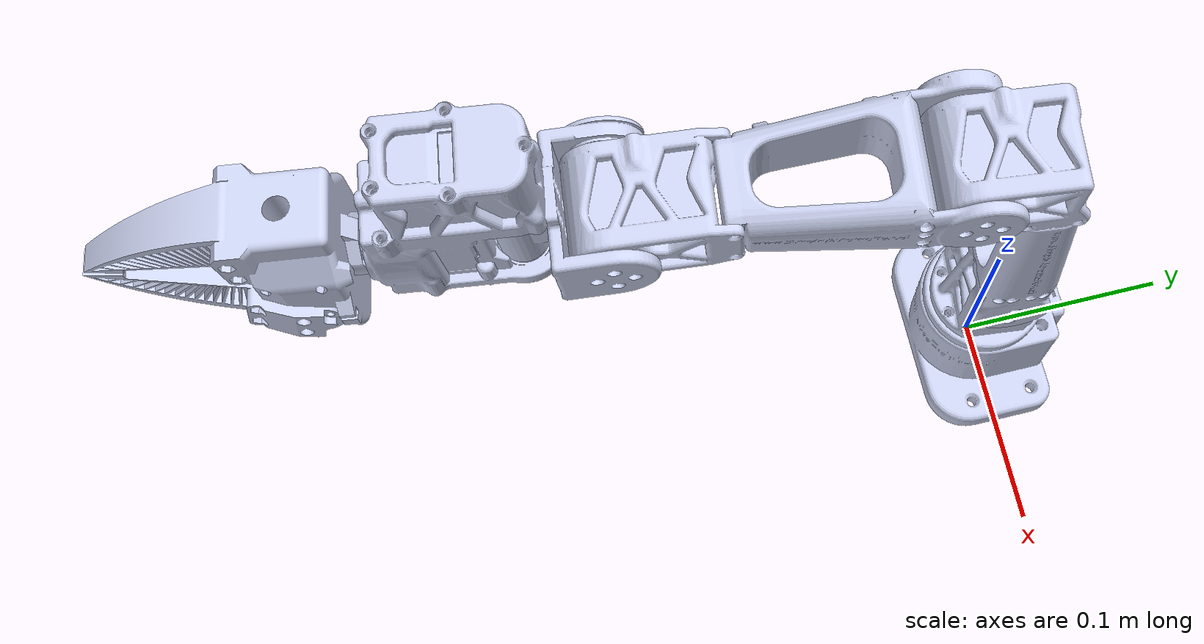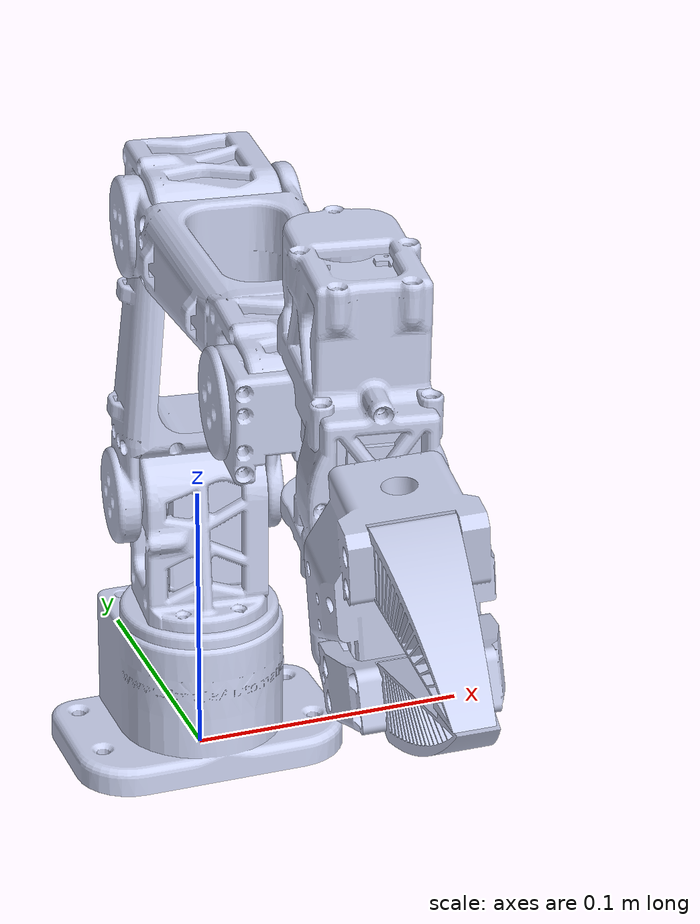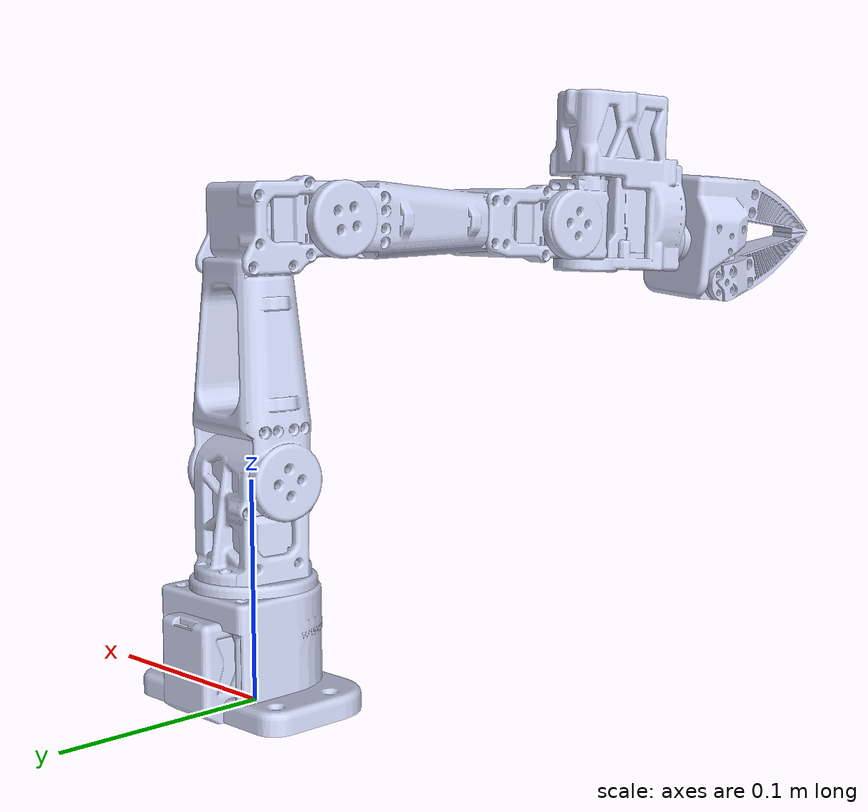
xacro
<?xml version="1.0"?>
<robot xmlns:xacro="http://www.ros.org/wiki/xacro" name="so_arm">
    <xacro:arg name="initial_positions_file" default="initial_positions.yaml" />

    <!-- Import so_arm urdf file -->
    <xacro:include filename="$(find so_arm)/urdf/so_arm.urdf" />

    <!-- Import control_xacro -->
    <xacro:include filename="so_arm.ros2_control.xacro" />

    <xacro:so_arm_ros2_control name="FakeSystem" initial_positions_file="$(arg initial_positions_file)"/>

</robot>

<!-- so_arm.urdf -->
<robot
  name="so_arm">
  <link
    name="base_link">
    <inertial>
      <origin
        xyz="-5.4461E-08 0.0042709 0.021249"
        rpy="0 0 0" />
      <mass
        value="0.15644" />
      <inertia
        ixx="6.3447E-05"
        ixy="7.3298E-11"
        ixz="1.3366E-10"
        iyy="8.3569E-05"
        iyz="-8.0284E-07"
        izz="0.00011368" />
    </inertial>
    <visual>
      <origin
        xyz="0 0 0"
        rpy="0 0 0" />
      <geometry>
        <mesh
          filename="package://so_arm/meshes/base_link.STL" />
      </geometry>
      <material
        name="">
        <color
          rgba="0.79216 0.81961 0.93333 1" />
      </material>
    </visual>
    <collision>
      <origin
        xyz="0 0 0"
        rpy="0 0 0" />
      <geometry>
        <mesh
          filename="package://so_arm/meshes/base_link.STL" />
      </geometry>
    </collision>
  </link>
  <link
    name="link1">
    <inertial>
      <origin
        xyz="0.00077888 0.00019799 0.023144"
        rpy="0 0 0" />
      <mass
        value="0.093673" />
      <inertia
        ixx="3.2621E-05"
        ixy="-1.4665E-11"
        ixz="-3.5892E-07"
        iyy="3.3211E-05"
        iyz="-2.9572E-11"
        izz="2.2848E-05" />
    </inertial>
    <visual>
      <origin
        xyz="0 0 0"
        rpy="0 0 0" />
      <geometry>
        <mesh
          filename="package://so_arm/meshes/link1.STL" />
      </geometry>
      <material
        name="">
        <color
          rgba="0.79216 0.81961 0.93333 1" />
      </material>
    </visual>
    <collision>
      <origin
        xyz="0 0 0"
        rpy="0 0 0" />
      <geometry>
        <mesh
          filename="package://so_arm/meshes/link1.STL" />
      </geometry>
    </collision>
  </link>
  <joint
    name="joint1"
    type="revolute">
    <origin
      xyz="0 0 0.056"
      rpy="0 0 -0.10571" />
    <parent
      link="base_link" />
    <child
      link="link1" />
    <axis
      xyz="0 0 -1" />
    <limit
      lower="-1.74"
      upper="1.74"
      effort="50"
      velocity="10" />
  </joint>
  <link
    name="link2">
    <inertial>
      <origin
        xyz="0.00056959 -0.0084736 0.075645"
        rpy="0 0 0" />
      <mass
        value="0.13807" />
      <inertia
        ixx="6.4279E-05"
        ixy="-2.3497E-07"
        ixz="2.6936E-07"
        iyy="6.9152E-05"
        iyz="6.1536E-07"
        izz="4.1827E-05" />
    </inertial>
    <visual>
      <origin
        xyz="0 0 0"
        rpy="0 0 0" />
      <geometry>
        <mesh
          filename="package://so_arm/meshes/link2.STL" />
      </geometry>
      <material
        name="">
        <color
          rgba="0.79216 0.81961 0.93333 1" />
      </material>
    </visual>
    <collision>
      <origin
        xyz="0 0 0"
        rpy="0 0 0" />
      <geometry>
        <mesh
          filename="package://so_arm/meshes/link2.STL" />
      </geometry>
    </collision>
  </link>
  <joint
    name="joint2"
    type="revolute">
    <origin
      xyz="-0.0020205 0.00025 0.0468"
      rpy="-0.0095042 0 0" />
    <parent
      link="link1" />
    <child
      link="link2" />
    <axis
      xyz="-1 0 0" />
    <limit
      lower="-1.74"
      upper="1.74"
      effort="50"
      velocity="10" />
  </joint>
  <link
    name="link3">
    <inertial>
      <origin
        xyz="0.001065 -0.081214 3.7827E-05"
        rpy="0 0 0" />
      <mass
        value="0.13814" />
      <inertia
        ixx="6.4804E-05"
        ixy="-4.3334E-07"
        ixz="1.3913E-09"
        iyy="3.0399E-05"
        iyz="-2.7931E-08"
        izz="8.1111E-05" />
    </inertial>
    <visual>
      <origin
        xyz="0 0 0"
        rpy="0 0 0" />
      <geometry>
        <mesh
          filename="package://so_arm/meshes/link3.STL" />
      </geometry>
      <material
        name="">
        <color
          rgba="0.79216 0.81961 0.93333 1" />
      </material>
    </visual>
    <collision>
      <origin
        xyz="0 0 0"
        rpy="0 0 0" />
      <geometry>
        <mesh
          filename="package://so_arm/meshes/link3.STL" />
      </geometry>
    </collision>
  </link>
  <joint
    name="joint3"
    type="revolute">
    <origin
      xyz="-0.0012705 -0.031816 0.1122"
      rpy="0.033075 0 0" />
    <parent
      link="link2" />
    <child
      link="link3" />
    <axis
      xyz="-1 0 0" />
    <limit
      lower="-1.74"
      upper="1.74"
      effort="50"
      velocity="10" />
  </joint>
  <link
    name="link4">
    <inertial>
      <origin
        xyz="0.0014499 -0.019219 0.0020305"
        rpy="0 0 0" />
      <mass
        value="0.036387" />
      <inertia
        ixx="4.3271E-06"
        ixy="4.8146E-09"
        ixz="5.6119E-08"
        iyy="5.3274E-06"
        iyz="-4.705E-08"
        izz="4.0371E-06" />
    </inertial>
    <visual>
      <origin
        xyz="0 0 0"
        rpy="0 0 0" />
      <geometry>
        <mesh
          filename="package://so_arm/meshes/link4.STL" />
      </geometry>
      <material
        name="">
        <color
          rgba="0.79216 0.81961 0.93333 1" />
      </material>
    </visual>
    <collision>
      <origin
        xyz="0 0 0"
        rpy="0 0 0" />
      <geometry>
        <mesh
          filename="package://so_arm/meshes/link4.STL" />
      </geometry>
    </collision>
  </link>
  <joint
    name="joint4"
    type="revolute">
    <origin
      xyz="0 -0.1375 -1.6154E-05"
      rpy="0.015665 0 0" />
    <parent
      link="link3" />
    <child
      link="link4" />
    <axis
      xyz="-1 0 0" />
    <limit
      lower="-1.74"
      upper="1.74"
      effort="50"
      velocity="10" />
  </joint>
  <link
    name="link5">
    <inertial>
      <origin
        xyz="1.0228E-07 -0.022353 0.018403"
        rpy="0 0 0" />
      <mass
        value="0.13165" />
      <inertia
        ixx="4.3172E-05"
        ixy="7.6961E-11"
        ixz="2.7003E-10"
        iyy="2.9515E-05"
        iyz="-1.4753E-06"
        izz="3.7152E-05" />
    </inertial>
    <visual>
      <origin
        xyz="0 0 0"
        rpy="0 0 0" />
      <geometry>
        <mesh
          filename="package://so_arm/meshes/link5.STL" />
      </geometry>
      <material
        name="">
        <color
          rgba="0.79216 0.81961 0.93333 1" />
      </material>
    </visual>
    <collision>
      <origin
        xyz="0 0 0"
        rpy="0 0 0" />
      <geometry>
        <mesh
          filename="package://so_arm/meshes/link5.STL" />
      </geometry>
    </collision>
  </link>
  <joint
    name="joint5"
    type="revolute">
    <origin
      xyz="0.00125 -0.0345 0.00475"
      rpy="0 0 -0.037806" />
    <parent
      link="link4" />
    <child
      link="link5" />
    <axis
      xyz="0 0 -1" />
    <limit
      lower="-1.74"
      upper="1.74"
      effort="50"
      velocity="10" />
  </joint>
  <link
    name="link6">
    <inertial>
      <origin
        xyz="-0.00030679 -0.034514 0.0057174"
        rpy="0 0 0" />
      <mass
        value="0.092788" />
      <inertia
        ixx="2.9205E-05"
        ixy="-2.0679E-07"
        ixz="-4.8816E-07"
        iyy="3.0177E-05"
        iyz="3.7929E-06"
        izz="2.2464E-05" />
    </inertial>
    <visual>
      <origin
        xyz="0 0 0"
        rpy="0 0 0" />
      <geometry>
        <mesh
          filename="package://so_arm/meshes/link6.STL" />
      </geometry>
      <material
        name="">
        <color
          rgba="0.79216 0.81961 0.93333 1" />
      </material>
    </visual>
    <collision>
      <origin
        xyz="0 0 0"
        rpy="0 0 0" />
      <geometry>
        <mesh
          filename="package://so_arm/meshes/link6.STL" />
      </geometry>
    </collision>
  </link>
  <joint
    name="joint6"
    type="revolute">
    <origin
      xyz="0 -0.0488 -0.01045"
      rpy="0.00037206 -0.083067 -0.0056111" />
    <parent
      link="link5" />
    <child
      link="link6" />
    <axis
      xyz="0.0055918 -0.99998 -9.3512E-05" />
    <limit
      lower="-1.74"
      upper="1.74"
      effort="50"
      velocity="10" />
  </joint>
  <link
    name="link7">
    <inertial>
      <origin
        xyz="0.00055642 0.0047804 0.02701"
        rpy="0 0 0" />
      <mass
        value="0.018906" />
      <inertia
        ixx="4.0825E-06"
        ixy="7.4943E-09"
        ixz="3.64E-08"
        iyy="6.0638E-06"
        iyz="-8.3224E-07"
        izz="3.7828E-06" />
    </inertial>
    <visual>
      <origin
        xyz="0 0 0"
        rpy="0 0 0" />
      <geometry>
        <mesh
          filename="package://so_arm/meshes/link7.STL" />
      </geometry>
      <material
        name="">
        <color
          rgba="0.79216 0.81961 0.93333 1" />
      </material>
    </visual>
    <collision>
      <origin
        xyz="0 0 0"
        rpy="0 0 0" />
      <geometry>
        <mesh
          filename="package://so_arm/meshes/link7.STL" />
      </geometry>
    </collision>
  </link>
  <joint
    name="joint7"
    type="revolute">
    <origin
      xyz="-6.7507E-05 -0.033189 -0.020059"
      rpy="1.5316 0 0.0055918" />
    <parent
      link="link6" />
    <child
      link="link7" />
    <axis
      xyz="-1 0 0" />
    <limit
      lower="-1.74"
      upper="0.5"
      effort="50"
      velocity="10" />
  </joint>
</robot>
